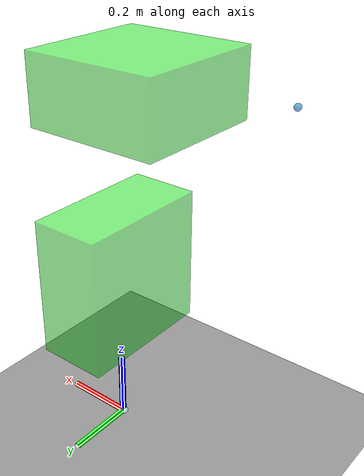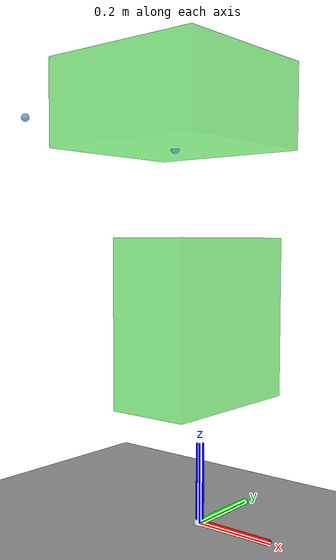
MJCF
<mujoco><compiler angle="radian"/><worldbody><site name="base" pos="0 0 0" type="sphere" size="0.015" rgba="0.8 1 1 1"/><site name="x_axis" euler="0 1.57 0" pos="0.1 0 0" type="cylinder" size="0.01 0.1" rgba="1 0 0 1"/><site name="y_axis" euler="-1.57 0 0" pos="0 0.1 0" type="cylinder" size="0.01 0.1" rgba="0 1 0 1"/><site name="z_axis" euler="0 0 0" pos="0 0 0.1" type="cylinder" size="0.01 0.1" rgba="0 0 1 1"/><light diffuse=".5 .5 .5" pos="0 0 3" dir="0 0 -1"/><geom type="plane" size="1 1 0.1" rgba=".6 0.6 0.6 1"/><body><geom pos="0.00 0.00 0.50" type="box" size="0.10 0.20 0.20" rgba="0 .9 0 .5" name="servo0" quat="1.000 -0.000 0.000 0.000"/><joint type="hinge" pos="0.00 -0.10 0.90"/><site name="base0" pos="0.00 0.00 0.50" type="sphere" size="0.01" rgba="0.8 0 0 .6"/><site name="end0" pos="0.00 -0.10 0.90" type="sphere" size="0.01" rgba="0 0.5 .8 .6"/><body><geom pos="0.00 -0.10 1.00" type="box" size="0.10 0.20 0.20" rgba="0 .9 0 .5" name="servo1" quat="-0.707 0.000 0.707 0.000"/><joint type="hinge" pos="-0.40 -0.20 1.00"/><site name="base1" pos="0.00 -0.10 1.00" type="sphere" size="0.01" rgba="0.8 0 0 .6"/><site name="end1" pos="-0.40 -0.20 1.00" type="sphere" size="0.01" rgba="0 0.5 .8 .6"/></body></body></worldbody></mujoco>
